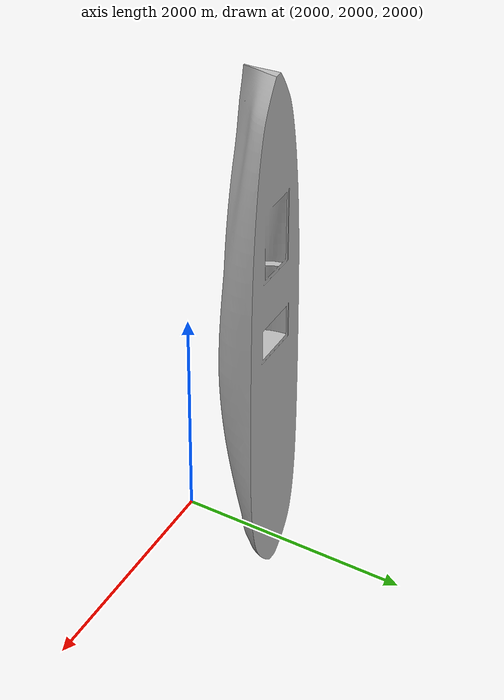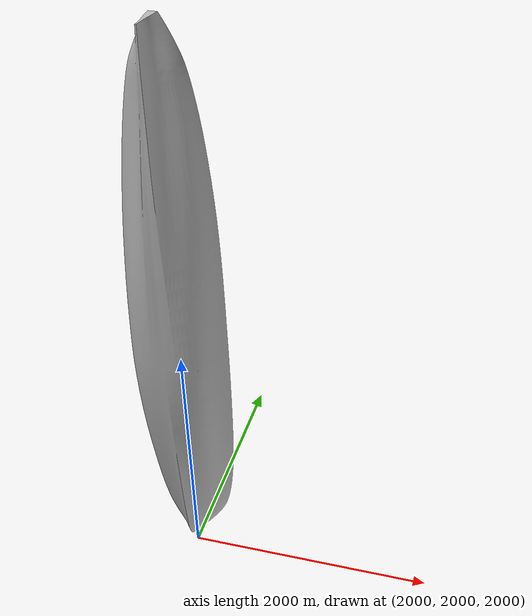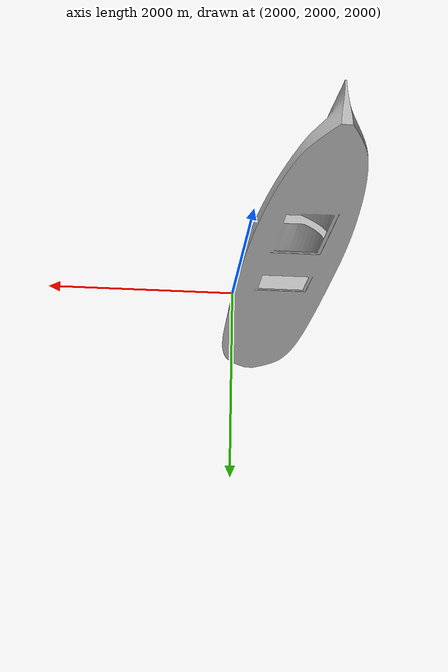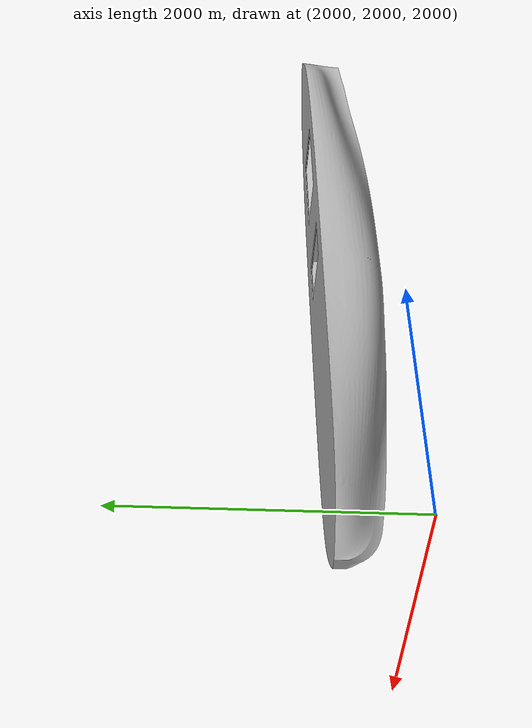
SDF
<?xml version='1.0'?>
<sdf version='1.7'>
  <model name='caravel'>
    <enable_wind>true</enable_wind>

    <link name="base_link">
      <visual name="visual">
        <geometry>
          <mesh>
            <uri>model://caravel/meshes/caravel.stl</uri>
          </mesh>
        </geometry>
      </visual>
      <collision name="collision">
        <geometry>
          <mesh>
            <uri>model://caravel/meshes/caravel.stl</uri>
          </mesh>
        </geometry>
      </collision>
      <inertial>
        <pose>0 0 0 0 0 0</pose>
        <mass>180</mass>
        <inertia>
          <ixx>120</ixx>
          <ixy>0</ixy>
          <iyy>393</iyy>
          <iyz>0</iyz>
          <izz>446</izz>
        </inertia>
      </inertial>
    </link>

    <!-- Hydrodynamics plugin -->
    <plugin
        filename="gz-waves1-hydrodynamics-system"
        name="gz::sim::systems::Hydrodynamics">

        <enable>caravel::base_link</enable>

        <hydrodynamics>

          <damping_on>1</damping_on>
          <viscous_drag_on>1</viscous_drag_on>
          <pressure_drag_on>1</pressure_drag_on>

          <!-- Linear and Angular Damping -->
          <cDampL1>1.0E-6</cDampL1>
          <cDampL2>1.0E-6</cDampL2>
          <cDampR1>1.0E-6</cDampR1>
          <cDampR2>1.0E-6</cDampR2>

          <!-- 'Pressure' Drag -->
          <cPDrag1>1.0E+2</cPDrag1>
          <cPDrag2>1.0E+2</cPDrag2>
          <fPDrag>0.4</fPDrag>
          <cSDrag1>1.0E+2</cSDrag1>
          <cSDrag2>1.0E+2</cSDrag2>
          <fSDrag>0.4</fSDrag>
          <vRDrag>1.0</vRDrag>

        </hydrodynamics>
    </plugin>
  </model>
</sdf>
